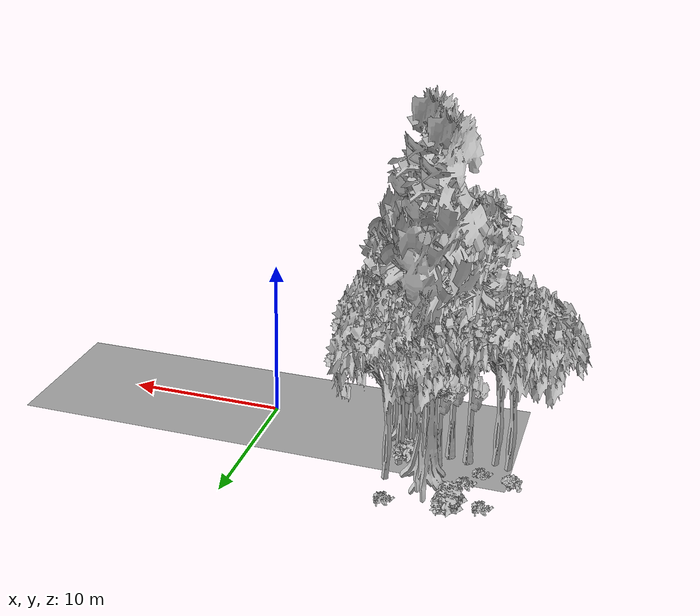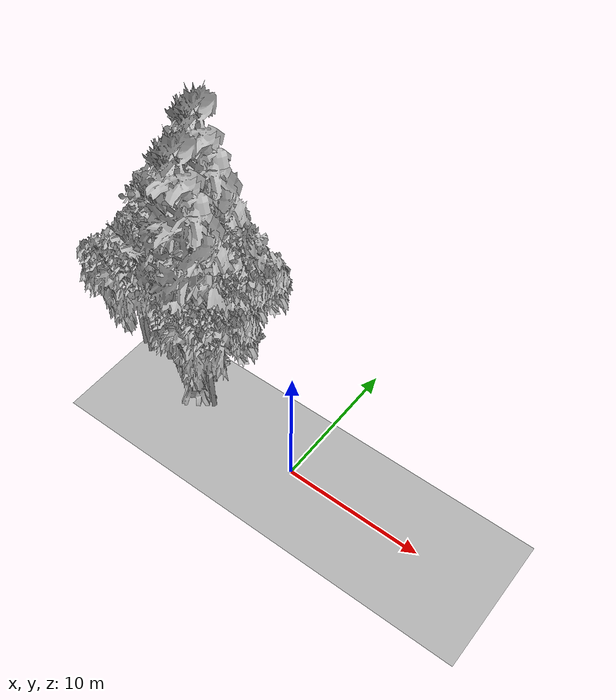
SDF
<sdf version="1.7">
 <world name="default">
  <model name="ground_plane">
   <static>1</static>
   <link name="link">
    <collision name="collision">
     <geometry><plane><normal>0 0 1</normal><size>100 100</size></plane></geometry>
     <surface><contact><ode><min_depth>0.01</min_depth><max_vel>0</max_vel></ode></contact></surface>
    </collision>
    <visual name="grass">
     <cast_shadows>0</cast_shadows>
     <geometry>
      <mesh>
       <scale>0.5814285714285714 0.18142857142857144 0.1</scale>
       <uri>file://grass_plane/meshes/grass_plane.dae</uri>
      </mesh>
     </geometry>
    </visual>
   </link>
  </model>
  <model name="Tree 9">
   <static>1</static>
   <pose>-8.203070580650177 1.2995697887504534 0 1.57079 -0 0</pose>
   <link name="link">
    <collision name="collision">
     <geometry><mesh><scale>3.5 5 3.5</scale><uri>model://tree_2/meshes/tree_2.obj</uri></mesh></geometry>
    </collision>
    <visual name="visual">
     <geometry><mesh><scale>3.5 5 3.5</scale><uri>model://tree_2/meshes/tree_2.obj</uri></mesh></geometry>
    </visual>
   </link>
  </model>
  <model name="Tree 24">
   <static>1</static>
   <pose>-9.336992735483946 1.3210746155699695 0 1.57079 -0 0</pose>
   <link name="link">
    <collision name="collision">
     <geometry><mesh><scale>3.5 5 3.5</scale><uri>model://tree_4/meshes/tree_4.obj</uri></mesh></geometry>
    </collision>
    <visual name="visual">
     <geometry><mesh><scale>3.5 5 3.5</scale><uri>model://tree_4/meshes/tree_4.obj</uri></mesh></geometry>
    </visual>
   </link>
  </model>
  <model name="Tree 35">
   <static>1</static>
   <pose>-15.562215280508859 2.407233266605381 0 1.57079 -0 0</pose>
   <link name="link">
    <collision name="collision">
     <geometry><mesh><scale>3.5 5 3.5</scale><uri>model://tree_2/meshes/tree_2.obj</uri></mesh></geometry>
    </collision>
    <visual name="visual">
     <geometry><mesh><scale>3.5 5 3.5</scale><uri>model://tree_2/meshes/tree_2.obj</uri></mesh></geometry>
    </visual>
   </link>
  </model>
  <model name="Tree 74">
   <static>1</static>
   <pose>-11.376622710560973 3.4101426264522168 0 1.57079 -0 0</pose>
   <link name="link">
    <collision name="collision">
     <geometry><mesh><scale>3.5 5 3.5</scale><uri>model://tree_9/meshes/tree_9.obj</uri></mesh></geometry>
    </collision>
    <visual name="visual">
     <geometry><mesh><scale>3.5 5 3.5</scale><uri>model://tree_9/meshes/tree_9.obj</uri></mesh></geometry>
    </visual>
   </link>
  </model>
  <model name="Tree 80">
   <static>1</static>
   <pose>-8.86147665553029 5.649098851880659 0 1.57079 -0 0</pose>
   <link name="link">
    <collision name="collision">
     <geometry><mesh><scale>3.5 5 3.5</scale><uri>model://tree_2/meshes/tree_2.obj</uri></mesh></geometry>
    </collision>
    <visual name="visual">
     <geometry><mesh><scale>3.5 5 3.5</scale><uri>model://tree_2/meshes/tree_2.obj</uri></mesh></geometry>
    </visual>
   </link>
  </model>
  <model name="Tree 138">
   <static>1</static>
   <pose>-11.910595742061695 2.1820298597086705 0 1.57079 -0 0</pose>
   <link name="link">
    <collision name="collision">
     <geometry><mesh><scale>3.5 5 3.5</scale><uri>model://tree_9/meshes/tree_9.obj</uri></mesh></geometry>
    </collision>
    <visual name="visual">
     <geometry><mesh><scale>3.5 5 3.5</scale><uri>model://tree_9/meshes/tree_9.obj</uri></mesh></geometry>
    </visual>
   </link>
  </model>
  <model name="Tree 151">
   <static>1</static>
   <pose>-11.051541083544372 5.04645624579268 0 1.57079 -0 0</pose>
   <link name="link">
    <collision name="collision">
     <geometry><mesh><scale>3.5 5 3.5</scale><uri>model://tree_4/meshes/tree_4.obj</uri></mesh></geometry>
    </collision>
    <visual name="visual">
     <geometry><mesh><scale>3.5 5 3.5</scale><uri>model://tree_4/meshes/tree_4.obj</uri></mesh></geometry>
    </visual>
   </link>
  </model>
  <model name="Tree 168">
   <static>1</static>
   <pose>-10.316002294337515 3.687452514567905 0 1.57079 -0 0</pose>
   <link name="link">
    <collision name="collision">
     <geometry><mesh><scale>3.5 5 3.5</scale><uri>model://tree_9/meshes/tree_9.obj</uri></mesh></geometry>
    </collision>
    <visual name="visual">
     <geometry><mesh><scale>3.5 5 3.5</scale><uri>model://tree_9/meshes/tree_9.obj</uri></mesh></geometry>
    </visual>
   </link>
  </model>
  <model name="Tree 190">
   <static>1</static>
   <pose>-14.734701218188242 2.0856615551321873 0 1.57079 -0 0</pose>
   <link name="link">
    <collision name="collision">
     <geometry><mesh><scale>3.5 5 3.5</scale><uri>model://tree_2/meshes/tree_2.obj</uri></mesh></geometry>
    </collision>
    <visual name="visual">
     <geometry><mesh><scale>3.5 5 3.5</scale><uri>model://tree_2/meshes/tree_2.obj</uri></mesh></geometry>
    </visual>
   </link>
  </model>
  <model name="Tree 223">
   <static>1</static>
   <pose>-13.037396519186679 2.4488780758420283 0 1.57079 -0 0</pose>
   <link name="link">
    <collision name="collision">
     <geometry><mesh><scale>3.5 5 3.5</scale><uri>model://tree_9/meshes/tree_9.obj</uri></mesh></geometry>
    </collision>
    <visual name="visual">
     <geometry><mesh><scale>3.5 5 3.5</scale><uri>model://tree_9/meshes/tree_9.obj</uri></mesh></geometry>
    </visual>
   </link>
  </model>
  <model name="Tree 225">
   <static>1</static>
   <pose>-9.228845754798193 3.8495453642869677 0 1.57079 -0 0</pose>
   <link name="link">
    <collision name="collision">
     <geometry><mesh><scale>3.5 5 3.5</scale><uri>model://tree_2/meshes/tree_2.obj</uri></mesh></geometry>
    </collision>
    <visual name="visual">
     <geometry><mesh><scale>3.5 5 3.5</scale><uri>model://tree_2/meshes/tree_2.obj</uri></mesh></geometry>
    </visual>
   </link>
  </model>
  <model name="Tree 272">
   <static>1</static>
   <pose>-9.642151335407135 2.788305531943646 0 1.57079 -0 0</pose>
   <link name="link">
    <collision name="collision">
     <geometry><mesh><scale>3.5 5 3.5</scale><uri>model://tree_2/meshes/tree_2.obj</uri></mesh></geometry>
    </collision>
    <visual name="visual">
     <geometry><mesh><scale>3.5 5 3.5</scale><uri>model://tree_2/meshes/tree_2.obj</uri></mesh></geometry>
    </visual>
   </link>
  </model>
  <model name="Tree 319">
   <static>1</static>
   <pose>-9.166509890061668 2.827354614895082 0 1.57079 -0 0</pose>
   <link name="link">
    <collision name="collision">
     <geometry><mesh><scale>3.5 5 3.5</scale><uri>model://tree_9/meshes/tree_9.obj</uri></mesh></geometry>
    </collision>
    <visual name="visual">
     <geometry><mesh><scale>3.5 5 3.5</scale><uri>model://tree_9/meshes/tree_9.obj</uri></mesh></geometry>
    </visual>
   </link>
  </model>
  <model name="Tree 394">
   <static>1</static>
   <pose>-7.823108236507174 1.0904634128312942 0 1.57079 -0 0</pose>
   <link name="link">
    <collision name="collision">
     <geometry><mesh><scale>3.5 5 3.5</scale><uri>model://tree_2/meshes/tree_2.obj</uri></mesh></geometry>
    </collision>
    <visual name="visual">
     <geometry><mesh><scale>3.5 5 3.5</scale><uri>model://tree_2/meshes/tree_2.obj</uri></mesh></geometry>
    </visual>
   </link>
  </model>
  <model name="Bush 21">
   <static>1</static>
   <pose>-14.73817130091036 6.999276936778667 0 1.57079 -0 0</pose>
   <link name="link">
    <collision name="collision">
     <geometry><mesh><scale>2 2 2</scale><uri>model://bush_2/meshes/bush_2.obj</uri></mesh></geometry>
     <surface><contact><collide_without_contact>false</collide_without_contact></contact></surface>
    </collision>
    <visual name="visual">
     <geometry><mesh><scale>2 2 2</scale><uri>model://bush_2/meshes/bush_2.obj</uri></mesh></geometry>
    </visual>
   </link>
  </model>
  <model name="Bush 43">
   <static>1</static>
   <pose>-13.054474536156725 7.426522576355708 0 1.57079 -0 0</pose>
   <link name="link">
    <collision name="collision">
     <geometry><mesh><scale>2 2 2</scale><uri>model://bush_1/meshes/bush_1.obj</uri></mesh></geometry>
     <surface><contact><collide_without_contact>false</collide_without_contact></contact></surface>
    </collision>
    <visual name="visual">
     <geometry><mesh><scale>2 2 2</scale><uri>model://bush_1/meshes/bush_1.obj</uri></mesh></geometry>
    </visual>
   </link>
  </model>
  <model name="Bush 89">
   <static>1</static>
   <pose>-9.602650098049502 3.6057451340053177 0 1.57079 -0 0</pose>
   <link name="link">
    <collision name="collision">
     <geometry><mesh><scale>2 2 2</scale><uri>model://bush_1/meshes/bush_1.obj</uri></mesh></geometry>
     <surface><contact><collide_without_contact>false</collide_without_contact></contact></surface>
    </collision>
    <visual name="visual">
     <geometry><mesh><scale>2 2 2</scale><uri>model://bush_1/meshes/bush_1.obj</uri></mesh></geometry>
    </visual>
   </link>
  </model>
  <model name="Bush 156">
   <static>1</static>
   <pose>-12.986561694328472 8.343533357136213 0 1.57079 -0 0</pose>
   <link name="link">
    <collision name="collision">
     <geometry><mesh><scale>2 2 2</scale><uri>model://bush_1/meshes/bush_1.obj</uri></mesh></geometry>
     <surface><contact><collide_without_contact>false</collide_without_contact></contact></surface>
    </collision>
    <visual name="visual">
     <geometry><mesh><scale>2 2 2</scale><uri>model://bush_1/meshes/bush_1.obj</uri></mesh></geometry>
    </visual>
   </link>
  </model>
  <model name="Bush 157">
   <static>1</static>
   <pose>-9.2339774212683 7.854693252402775 0 1.57079 -0 0</pose>
   <link name="link">
    <collision name="collision">
     <geometry><mesh><scale>2 2 2</scale><uri>model://bush_2/meshes/bush_2.obj</uri></mesh></geometry>
     <surface><contact><collide_without_contact>false</collide_without_contact></contact></surface>
    </collision>
    <visual name="visual">
     <geometry><mesh><scale>2 2 2</scale><uri>model://bush_2/meshes/bush_2.obj</uri></mesh></geometry>
    </visual>
   </link>
  </model>
  <model name="Bush 214">
   <static>1</static>
   <pose>-15.93725700929106 4.534345116509783 0 1.57079 -0 0</pose>
   <link name="link">
    <collision name="collision">
     <geometry><mesh><scale>2 2 2</scale><uri>model://bush_3/meshes/bush_3.obj</uri></mesh></geometry>
     <surface><contact><collide_without_contact>false</collide_without_contact></contact></surface>
    </collision>
    <visual name="visual">
     <geometry><mesh><scale>2 2 2</scale><uri>model://bush_3/meshes/bush_3.obj</uri></mesh></geometry>
    </visual>
   </link>
  </model>
  <model name="Bush 270">
   <static>1</static>
   <pose>-13.386211800636666 4.848401646389274 0 1.57079 -0 0</pose>
   <link name="link">
    <collision name="collision">
     <geometry><mesh><scale>2 2 2</scale><uri>model://bush_2/meshes/bush_2.obj</uri></mesh></geometry>
     <surface><contact><collide_without_contact>false</collide_without_contact></contact></surface>
    </collision>
    <visual name="visual">
     <geometry><mesh><scale>2 2 2</scale><uri>model://bush_2/meshes/bush_2.obj</uri></mesh></geometry>
    </visual>
   </link>
  </model>
  <model name="Bush 298">
   <static>1</static>
   <pose>-14.101618084679757 3.581532928604556 0 1.57079 -0 0</pose>
   <link name="link">
    <collision name="collision">
     <geometry><mesh><scale>2 2 2</scale><uri>model://bush_2/meshes/bush_2.obj</uri></mesh></geometry>
     <surface><contact><collide_without_contact>false</collide_without_contact></contact></surface>
    </collision>
    <visual name="visual">
     <geometry><mesh><scale>2 2 2</scale><uri>model://bush_2/meshes/bush_2.obj</uri></mesh></geometry>
    </visual>
   </link>
  </model>
 </world>
</sdf>
